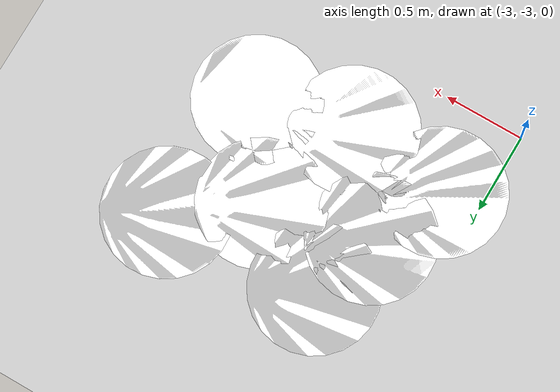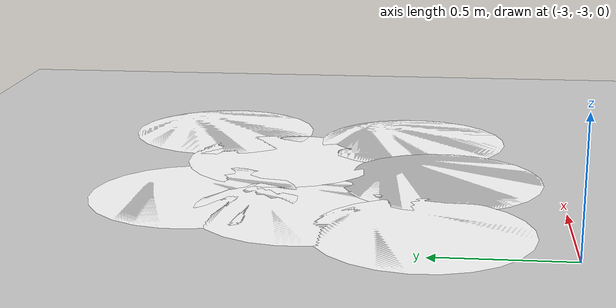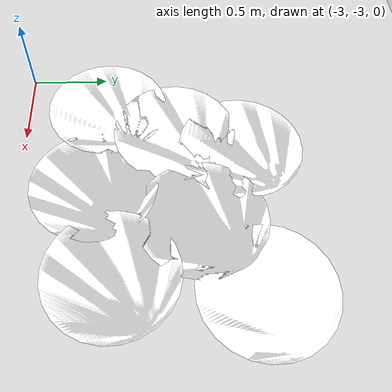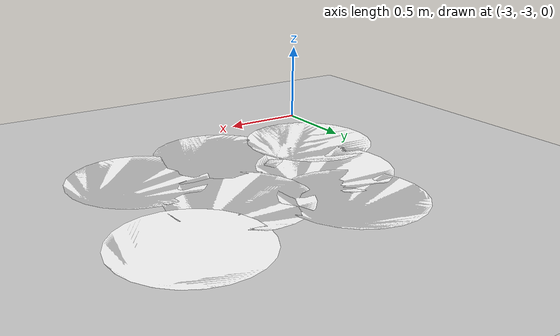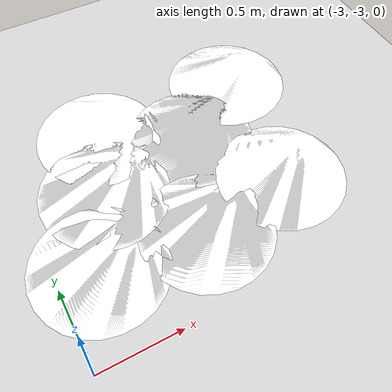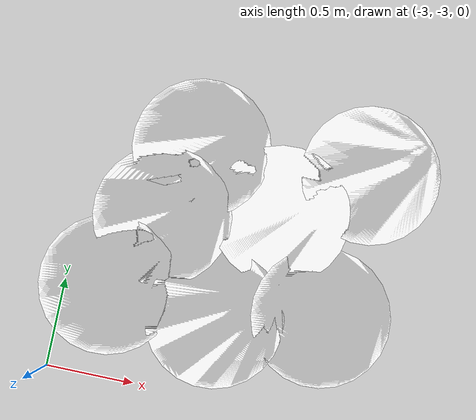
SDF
<sdf version="1.4">
 <world name="default">
  <light name="sun" type="directional">
   <pose>0 0 10 0 -0 0</pose>
   <diffuse>0.8 0.8 0.8 1</diffuse>
   <specular>0.2 0.2 0.2 1</specular>
   <attenuation>
    <range>1000</range>
    <constant>0.9</constant>
    <linear>0.01</linear>
    <quadratic>0.001</quadratic>
   </attenuation>
   <direction>-0.5 0.1 -0.9</direction>
  </light>
  <model name="ground_plane">
   <static>1</static>
   <link name="link">
    <collision name="collision">
     <geometry><plane><normal>0 0 1</normal><size>100 100</size></plane></geometry>
     <surface><friction><ode><mu>100</mu><mu2>50</mu2></ode></friction></surface>
    </collision>
    <visual name="visual">
     <cast_shadows>0</cast_shadows>
     <geometry><plane><normal>0 0 1</normal><size>100 100</size></plane></geometry>
     <material>
      <script><uri>file://media/materials/scripts/gazebo.material</uri><name>Gazebo/Grey</name></script>
     </material>
    </visual>
    <velocity_decay><linear>0</linear><angular>0</angular></velocity_decay>
   </link>
  </model>
  <physics type="ode">
   <max_step_size>0.01</max_step_size>
   <real_time_factor>1</real_time_factor>
   <real_time_update_rate>100</real_time_update_rate>
   <gravity>0 0 -9.8</gravity>
  </physics>
  <scene><ambient>0.4 0.4 0.4 1</ambient><background>0.7 0.7 0.7 1</background><shadows>1</shadows></scene>
  <model name="fogo">
   <static>1</static>
   <link name="chassis">
    <pose>0 0 0.001 0 -0 0</pose>
    <visual name="visual">
     <geometry><mesh><uri>file:///home/dav/.gazebo/models/1fogo/fire_marker.dae</uri></mesh></geometry>
    </visual>
    <velocity_decay><linear>0</linear><angular>0</angular></velocity_decay>
   </link>
   <pose>-2.12349 -2.5447 0 0 -0 0</pose>
  </model>
  <model name="fogo_0">
   <static>1</static>
   <link name="chassis">
    <pose>0 0 0.001 0 -0 0</pose>
    <visual name="visual">
     <geometry><mesh><uri>file:///home/dav/.gazebo/models/1fogo/fire_marker.dae</uri></mesh></geometry>
    </visual>
    <velocity_decay><linear>0</linear><angular>0</angular></velocity_decay>
   </link>
   <pose>-2.53598 -2.03323 0 0 -0 0</pose>
  </model>
  <model name="fogo_1">
   <static>1</static>
   <link name="chassis">
    <pose>0 0 0.001 0 -0 0</pose>
    <visual name="visual">
     <geometry><mesh><uri>file:///home/dav/.gazebo/models/1fogo/fire_marker.dae</uri></mesh></geometry>
    </visual>
    <velocity_decay><linear>0</linear><angular>0</angular></velocity_decay>
   </link>
   <pose>-2.75619 -2.48108 0 0 -0 0</pose>
  </model>
  <model name="fogo_2">
   <static>1</static>
   <link name="chassis">
    <pose>0 0 0.001 0 -0 0</pose>
    <visual name="visual">
     <geometry><mesh><uri>file:///home/dav/.gazebo/models/1fogo/fire_marker.dae</uri></mesh></geometry>
    </visual>
    <velocity_decay><linear>0</linear><angular>0</angular></velocity_decay>
   </link>
   <pose>-1.41754 -1.56171 0 0 -0 0</pose>
  </model>
  <model name="fogo_3">
   <static>1</static>
   <link name="chassis">
    <pose>0 0 0.001 0 -0 0</pose>
    <visual name="visual">
     <geometry><mesh><uri>file:///home/dav/.gazebo/models/1fogo/fire_marker.dae</uri></mesh></geometry>
    </visual>
    <velocity_decay><linear>0</linear><angular>0</angular></velocity_decay>
   </link>
   <pose>-1.53187 -2.41618 0 0 -0 0</pose>
  </model>
  <model name="fogo_4">
   <static>1</static>
   <link name="chassis">
    <pose>0 0 0.001 0 -0 0</pose>
    <visual name="visual">
     <geometry><mesh><uri>file:///home/dav/.gazebo/models/1fogo/fire_marker.dae</uri></mesh></geometry>
    </visual>
    <velocity_decay><linear>0</linear><angular>0</angular></velocity_decay>
   </link>
   <pose>-1.8733 -1.88895 0 0 -0 0</pose>
  </model>
  <model name="fogo_5">
   <static>1</static>
   <link name="chassis">
    <pose>0 0 0.001 0 -0 0</pose>
    <visual name="visual">
     <geometry><mesh><uri>file:///home/dav/.gazebo/models/1fogo/fire_marker.dae</uri></mesh></geometry>
    </visual>
    <velocity_decay><linear>0</linear><angular>0</angular></velocity_decay>
   </link>
   <pose>-2.3971 -1.60808 0 0 -0 0</pose>
  </model>
 </world>
</sdf>
